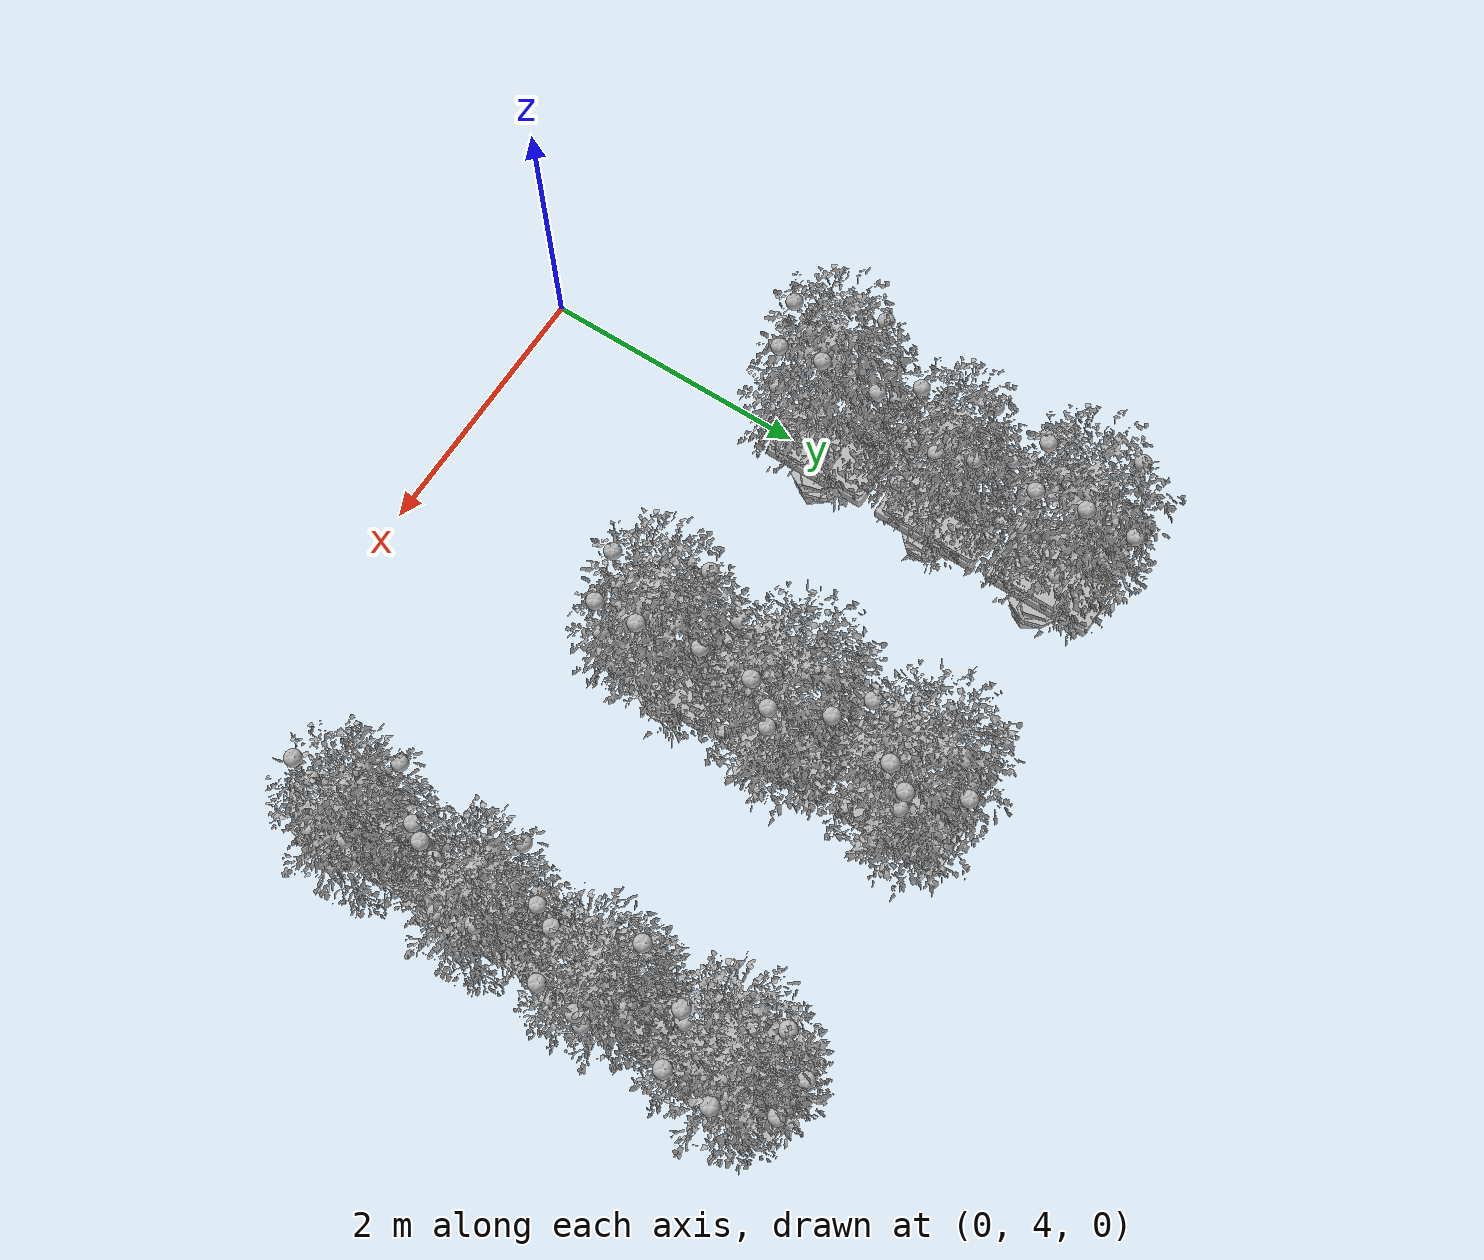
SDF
<sdf version="1.6">
 <world name="default">
  <model name="plant07">
   <static>1</static>
   <link name="plant_1_link">
    <visual name="visual">
     <pose>0 0 -0.45 0 -0 0</pose>
     <geometry>
      <mesh><uri>model://plant/meshes/plant.obj</uri><scale>1.10961 1.10961 1.10961</scale></mesh>
     </geometry>
    </visual>
    <collision name="collision"><geometry><box><size>0.1 0.1 0.1</size></box></geometry></collision>
   </link>
   <link name="trough_1::trough_link">
    <visual name="visual"><geometry><mesh><uri>model://trough/meshes/truf.obj</uri></mesh></geometry></visual>
    <collision name="collision">
     <geometry><mesh><uri>model://trough/meshes/truf.obj</uri></mesh></geometry>
    </collision>
    <pose>0 0 0 1.57 -0 0</pose>
   </link>
   <link name="tomato_10::tomato_link">
    <visual name="visual"><geometry><mesh><uri>model://tomato/meshes/tomato.obj</uri></mesh></geometry></visual>
    <collision name="collision">
     <geometry><mesh><uri>model://tomato/meshes/tomato.obj</uri></mesh></geometry>
    </collision>
    <pose>-0.201 0.268 0.917 0 -0 0</pose>
   </link>
   <link name="tomato_11::tomato_link">
    <visual name="visual"><geometry><mesh><uri>model://tomato/meshes/tomato.obj</uri></mesh></geometry></visual>
    <collision name="collision">
     <geometry><mesh><uri>model://tomato/meshes/tomato.obj</uri></mesh></geometry>
    </collision>
    <pose>0.181 0.231 1.714 0 -0 0</pose>
   </link>
   <link name="tomato_12::tomato_link">
    <visual name="visual"><geometry><mesh><uri>model://tomato/meshes/tomato.obj</uri></mesh></geometry></visual>
    <collision name="collision">
     <geometry><mesh><uri>model://tomato/meshes/tomato.obj</uri></mesh></geometry>
    </collision>
    <pose>0.371 -0.171 1.608 0 -0 0</pose>
   </link>
   <link name="tomato_13::tomato_link">
    <visual name="visual"><geometry><mesh><uri>model://tomato/meshes/tomato.obj</uri></mesh></geometry></visual>
    <collision name="collision">
     <geometry><mesh><uri>model://tomato/meshes/tomato.obj</uri></mesh></geometry>
    </collision>
    <pose>0.059 -0.345 0.978 0 -0 0</pose>
   </link>
   <link name="tomato_14::tomato_link">
    <visual name="visual"><geometry><mesh><uri>model://tomato/meshes/tomato.obj</uri></mesh></geometry></visual>
    <collision name="collision">
     <geometry><mesh><uri>model://tomato/meshes/tomato.obj</uri></mesh></geometry>
    </collision>
    <pose>-0.263 -0.309 1.283 0 -0 0</pose>
   </link>
   <link name="tomato_15::tomato_link">
    <visual name="visual"><geometry><mesh><uri>model://tomato/meshes/tomato.obj</uri></mesh></geometry></visual>
    <collision name="collision">
     <geometry><mesh><uri>model://tomato/meshes/tomato.obj</uri></mesh></geometry>
    </collision>
    <pose>-0.354 0.008 1.283 0 -0 0</pose>
   </link>
   <link name="tomato_16::tomato_link">
    <visual name="visual"><geometry><mesh><uri>model://tomato/meshes/tomato.obj</uri></mesh></geometry></visual>
    <collision name="collision">
     <geometry><mesh><uri>model://tomato/meshes/tomato.obj</uri></mesh></geometry>
    </collision>
    <pose>0.389 0.13 1.096 0 -0 0</pose>
   </link>
   <link name="tomato_17::tomato_link">
    <visual name="visual"><geometry><mesh><uri>model://tomato/meshes/tomato.obj</uri></mesh></geometry></visual>
    <collision name="collision">
     <geometry><mesh><uri>model://tomato/meshes/tomato.obj</uri></mesh></geometry>
    </collision>
    <pose>0.059 -0.345 1.95 0 -0 0</pose>
   </link>
   <link name="tomato_18::tomato_link">
    <visual name="visual"><geometry><mesh><uri>model://tomato/meshes/tomato.obj</uri></mesh></geometry></visual>
    <collision name="collision">
     <geometry><mesh><uri>model://tomato/meshes/tomato.obj</uri></mesh></geometry>
    </collision>
    <pose>-0.263 -0.309 1.773 0 -0 0</pose>
   </link>
   <link name="tomato_19::tomato_link">
    <visual name="visual"><geometry><mesh><uri>model://tomato/meshes/tomato.obj</uri></mesh></geometry></visual>
    <collision name="collision">
     <geometry><mesh><uri>model://tomato/meshes/tomato.obj</uri></mesh></geometry>
    </collision>
    <pose>-0.354 0.008 1.773 0 -0 0</pose>
   </link>
   <pose>0 6.3 0 0 -0 1.57</pose>
  </model>
  <model name="plant08">
   <static>1</static>
   <link name="plant_4::plant">
    <visual name="visual"><geometry><mesh><uri>model://plant/meshes/plant.obj</uri></mesh></geometry></visual>
    <collision name="collision"><geometry><box><size>0.1 0.1 0.1</size></box></geometry></collision>
    <pose>0 0 -0.45 0 0 -0.277507</pose>
   </link>
   <link name="trough::trough_link">
    <visual name="visual"><geometry><mesh><uri>model://trough/meshes/truf.obj</uri></mesh></geometry></visual>
    <collision name="collision">
     <geometry><mesh><uri>model://trough/meshes/truf.obj</uri></mesh></geometry>
    </collision>
    <pose>0 0 0 1.57 -0 0</pose>
   </link>
   <link name="tomato_40::tomato_link">
    <visual name="visual"><geometry><mesh><uri>model://tomato/meshes/tomato.obj</uri></mesh></geometry></visual>
    <collision name="collision">
     <geometry><mesh><uri>model://tomato/meshes/tomato.obj</uri></mesh></geometry>
    </collision>
    <pose>-0.297 0.244 0.669 0 -0 0</pose>
   </link>
   <link name="tomato_41::tomato_link">
    <visual name="visual"><geometry><mesh><uri>model://tomato/meshes/tomato.obj</uri></mesh></geometry></visual>
    <collision name="collision">
     <geometry><mesh><uri>model://tomato/meshes/tomato.obj</uri></mesh></geometry>
    </collision>
    <pose>0.073 0.375 1.175 0 -0 0</pose>
   </link>
   <link name="tomato_42::tomato_link">
    <visual name="visual"><geometry><mesh><uri>model://tomato/meshes/tomato.obj</uri></mesh></geometry></visual>
    <collision name="collision">
     <geometry><mesh><uri>model://tomato/meshes/tomato.obj</uri></mesh></geometry>
    </collision>
    <pose>0.196 -0.202 1.528 0 -0 0</pose>
   </link>
   <link name="tomato_43::tomato_link">
    <visual name="visual"><geometry><mesh><uri>model://tomato/meshes/tomato.obj</uri></mesh></geometry></visual>
    <collision name="collision">
     <geometry><mesh><uri>model://tomato/meshes/tomato.obj</uri></mesh></geometry>
    </collision>
    <pose>0.054 -0.237 0.732 0 -0 0</pose>
   </link>
   <link name="tomato_44::tomato_link">
    <visual name="visual"><geometry><mesh><uri>model://tomato/meshes/tomato.obj</uri></mesh></geometry></visual>
    <collision name="collision">
     <geometry><mesh><uri>model://tomato/meshes/tomato.obj</uri></mesh></geometry>
    </collision>
    <pose>-0.236 -0.275 0.851 0 -0 0</pose>
   </link>
   <link name="tomato_45::tomato_link">
    <visual name="visual"><geometry><mesh><uri>model://tomato/meshes/tomato.obj</uri></mesh></geometry></visual>
    <collision name="collision">
     <geometry><mesh><uri>model://tomato/meshes/tomato.obj</uri></mesh></geometry>
    </collision>
    <pose>-0.318 0.01 1.158 0 -0 0</pose>
   </link>
   <link name="tomato_46::tomato_link">
    <visual name="visual"><geometry><mesh><uri>model://tomato/meshes/tomato.obj</uri></mesh></geometry></visual>
    <collision name="collision">
     <geometry><mesh><uri>model://tomato/meshes/tomato.obj</uri></mesh></geometry>
    </collision>
    <pose>0.351 0.12 1.158 0 -0 0</pose>
   </link>
   <link name="tomato_47::tomato_link">
    <visual name="visual"><geometry><mesh><uri>model://tomato/meshes/tomato.obj</uri></mesh></geometry></visual>
    <collision name="collision">
     <geometry><mesh><uri>model://tomato/meshes/tomato.obj</uri></mesh></geometry>
    </collision>
    <pose>-0.039 -0.257 1.451 0 -0 0</pose>
   </link>
   <link name="tomato_48::tomato_link">
    <visual name="visual"><geometry><mesh><uri>model://tomato/meshes/tomato.obj</uri></mesh></geometry></visual>
    <collision name="collision">
     <geometry><mesh><uri>model://tomato/meshes/tomato.obj</uri></mesh></geometry>
    </collision>
    <pose>-0.236 -0.189 1.233 0 -0 0</pose>
   </link>
   <link name="tomato_49::tomato_link">
    <visual name="visual"><geometry><mesh><uri>model://tomato/meshes/tomato.obj</uri></mesh></geometry></visual>
    <collision name="collision">
     <geometry><mesh><uri>model://tomato/meshes/tomato.obj</uri></mesh></geometry>
    </collision>
    <pose>-0.318 0.01 1.599 0 -0 0</pose>
   </link>
   <pose>0 7.2 0 0 -0 1.57</pose>
  </model>
  <model name="plant09">
   <static>1</static>
   <link name="plant_1_link">
    <visual name="visual">
     <pose>0 0 -0.45 0 -0 0</pose>
     <geometry>
      <mesh><uri>model://plant/meshes/plant.obj</uri><scale>1.10961 1.10961 1.10961</scale></mesh>
     </geometry>
    </visual>
    <collision name="collision"><geometry><box><size>0.1 0.1 0.1</size></box></geometry></collision>
   </link>
   <link name="trough_1::trough_link">
    <visual name="visual"><geometry><mesh><uri>model://trough/meshes/truf.obj</uri></mesh></geometry></visual>
    <collision name="collision">
     <geometry><mesh><uri>model://trough/meshes/truf.obj</uri></mesh></geometry>
    </collision>
    <pose>0 0 0 1.57 -0 0</pose>
   </link>
   <link name="tomato_10::tomato_link">
    <visual name="visual"><geometry><mesh><uri>model://tomato/meshes/tomato.obj</uri></mesh></geometry></visual>
    <collision name="collision">
     <geometry><mesh><uri>model://tomato/meshes/tomato.obj</uri></mesh></geometry>
    </collision>
    <pose>-0.201 0.268 0.917 0 -0 0</pose>
   </link>
   <link name="tomato_11::tomato_link">
    <visual name="visual"><geometry><mesh><uri>model://tomato/meshes/tomato.obj</uri></mesh></geometry></visual>
    <collision name="collision">
     <geometry><mesh><uri>model://tomato/meshes/tomato.obj</uri></mesh></geometry>
    </collision>
    <pose>0.181 0.231 1.714 0 -0 0</pose>
   </link>
   <link name="tomato_12::tomato_link">
    <visual name="visual"><geometry><mesh><uri>model://tomato/meshes/tomato.obj</uri></mesh></geometry></visual>
    <collision name="collision">
     <geometry><mesh><uri>model://tomato/meshes/tomato.obj</uri></mesh></geometry>
    </collision>
    <pose>0.371 -0.171 1.608 0 -0 0</pose>
   </link>
   <link name="tomato_13::tomato_link">
    <visual name="visual"><geometry><mesh><uri>model://tomato/meshes/tomato.obj</uri></mesh></geometry></visual>
    <collision name="collision">
     <geometry><mesh><uri>model://tomato/meshes/tomato.obj</uri></mesh></geometry>
    </collision>
    <pose>0.059 -0.345 0.978 0 -0 0</pose>
   </link>
   <link name="tomato_14::tomato_link">
    <visual name="visual"><geometry><mesh><uri>model://tomato/meshes/tomato.obj</uri></mesh></geometry></visual>
    <collision name="collision">
     <geometry><mesh><uri>model://tomato/meshes/tomato.obj</uri></mesh></geometry>
    </collision>
    <pose>-0.263 -0.309 1.283 0 -0 0</pose>
   </link>
   <link name="tomato_15::tomato_link">
    <visual name="visual"><geometry><mesh><uri>model://tomato/meshes/tomato.obj</uri></mesh></geometry></visual>
    <collision name="collision">
     <geometry><mesh><uri>model://tomato/meshes/tomato.obj</uri></mesh></geometry>
    </collision>
    <pose>-0.354 0.008 1.283 0 -0 0</pose>
   </link>
   <link name="tomato_16::tomato_link">
    <visual name="visual"><geometry><mesh><uri>model://tomato/meshes/tomato.obj</uri></mesh></geometry></visual>
    <collision name="collision">
     <geometry><mesh><uri>model://tomato/meshes/tomato.obj</uri></mesh></geometry>
    </collision>
    <pose>0.389 0.13 1.096 0 -0 0</pose>
   </link>
   <link name="tomato_17::tomato_link">
    <visual name="visual"><geometry><mesh><uri>model://tomato/meshes/tomato.obj</uri></mesh></geometry></visual>
    <collision name="collision">
     <geometry><mesh><uri>model://tomato/meshes/tomato.obj</uri></mesh></geometry>
    </collision>
    <pose>0.059 -0.345 1.95 0 -0 0</pose>
   </link>
   <link name="tomato_18::tomato_link">
    <visual name="visual"><geometry><mesh><uri>model://tomato/meshes/tomato.obj</uri></mesh></geometry></visual>
    <collision name="collision">
     <geometry><mesh><uri>model://tomato/meshes/tomato.obj</uri></mesh></geometry>
    </collision>
    <pose>-0.263 -0.309 1.773 0 -0 0</pose>
   </link>
   <link name="tomato_19::tomato_link">
    <visual name="visual"><geometry><mesh><uri>model://tomato/meshes/tomato.obj</uri></mesh></geometry></visual>
    <collision name="collision">
     <geometry><mesh><uri>model://tomato/meshes/tomato.obj</uri></mesh></geometry>
    </collision>
    <pose>-0.354 0.008 1.773 0 -0 0</pose>
   </link>
   <pose>0 8.1 0 0 -0 1.57</pose>
  </model>
  <model name="plant17">
   <static>1</static>
   <link name="plant_1_link">
    <visual name="visual">
     <pose>0 0 -0.45 0 -0 0</pose>
     <geometry>
      <mesh><uri>model://plant/meshes/plant.obj</uri><scale>1.10961 1.10961 1.10961</scale></mesh>
     </geometry>
    </visual>
    <collision name="collision"><geometry><box><size>0.1 0.1 0.1</size></box></geometry></collision>
   </link>
   <link name="trough_1::trough_link">
    <visual name="visual"><geometry><mesh><uri>model://trough/meshes/truf.obj</uri></mesh></geometry></visual>
    <collision name="collision">
     <geometry><mesh><uri>model://trough/meshes/truf.obj</uri></mesh></geometry>
    </collision>
    <pose>0 0 0 1.57 -0 0</pose>
   </link>
   <link name="tomato_10::tomato_link">
    <visual name="visual"><geometry><mesh><uri>model://tomato/meshes/tomato.obj</uri></mesh></geometry></visual>
    <collision name="collision">
     <geometry><mesh><uri>model://tomato/meshes/tomato.obj</uri></mesh></geometry>
    </collision>
    <pose>-0.201 0.268 0.917 0 -0 0</pose>
   </link>
   <link name="tomato_11::tomato_link">
    <visual name="visual"><geometry><mesh><uri>model://tomato/meshes/tomato.obj</uri></mesh></geometry></visual>
    <collision name="collision">
     <geometry><mesh><uri>model://tomato/meshes/tomato.obj</uri></mesh></geometry>
    </collision>
    <pose>0.181 0.231 1.714 0 -0 0</pose>
   </link>
   <link name="tomato_12::tomato_link">
    <visual name="visual"><geometry><mesh><uri>model://tomato/meshes/tomato.obj</uri></mesh></geometry></visual>
    <collision name="collision">
     <geometry><mesh><uri>model://tomato/meshes/tomato.obj</uri></mesh></geometry>
    </collision>
    <pose>0.371 -0.171 1.608 0 -0 0</pose>
   </link>
   <link name="tomato_13::tomato_link">
    <visual name="visual"><geometry><mesh><uri>model://tomato/meshes/tomato.obj</uri></mesh></geometry></visual>
    <collision name="collision">
     <geometry><mesh><uri>model://tomato/meshes/tomato.obj</uri></mesh></geometry>
    </collision>
    <pose>0.059 -0.345 0.978 0 -0 0</pose>
   </link>
   <link name="tomato_14::tomato_link">
    <visual name="visual"><geometry><mesh><uri>model://tomato/meshes/tomato.obj</uri></mesh></geometry></visual>
    <collision name="collision">
     <geometry><mesh><uri>model://tomato/meshes/tomato.obj</uri></mesh></geometry>
    </collision>
    <pose>-0.263 -0.309 1.283 0 -0 0</pose>
   </link>
   <link name="tomato_15::tomato_link">
    <visual name="visual"><geometry><mesh><uri>model://tomato/meshes/tomato.obj</uri></mesh></geometry></visual>
    <collision name="collision">
     <geometry><mesh><uri>model://tomato/meshes/tomato.obj</uri></mesh></geometry>
    </collision>
    <pose>-0.354 0.008 1.283 0 -0 0</pose>
   </link>
   <link name="tomato_16::tomato_link">
    <visual name="visual"><geometry><mesh><uri>model://tomato/meshes/tomato.obj</uri></mesh></geometry></visual>
    <collision name="collision">
     <geometry><mesh><uri>model://tomato/meshes/tomato.obj</uri></mesh></geometry>
    </collision>
    <pose>0.389 0.13 1.096 0 -0 0</pose>
   </link>
   <link name="tomato_17::tomato_link">
    <visual name="visual"><geometry><mesh><uri>model://tomato/meshes/tomato.obj</uri></mesh></geometry></visual>
    <collision name="collision">
     <geometry><mesh><uri>model://tomato/meshes/tomato.obj</uri></mesh></geometry>
    </collision>
    <pose>0.059 -0.345 1.95 0 -0 0</pose>
   </link>
   <link name="tomato_18::tomato_link">
    <visual name="visual"><geometry><mesh><uri>model://tomato/meshes/tomato.obj</uri></mesh></geometry></visual>
    <collision name="collision">
     <geometry><mesh><uri>model://tomato/meshes/tomato.obj</uri></mesh></geometry>
    </collision>
    <pose>-0.263 -0.309 1.773 0 -0 0</pose>
   </link>
   <link name="tomato_19::tomato_link">
    <visual name="visual"><geometry><mesh><uri>model://tomato/meshes/tomato.obj</uri></mesh></geometry></visual>
    <collision name="collision">
     <geometry><mesh><uri>model://tomato/meshes/tomato.obj</uri></mesh></geometry>
    </collision>
    <pose>-0.354 0.008 1.773 0 -0 0</pose>
   </link>
   <pose>2 6.3 0 0 -0 1.57</pose>
  </model>
  <model name="plant18">
   <static>1</static>
   <link name="plant_3_link">
    <visual name="visual">
     <pose>0 0 -0.45 0 0 -1.57</pose>
     <geometry>
      <mesh><uri>model://plant/meshes/plant.obj</uri><scale>1.13768 1.13768 1.13768</scale></mesh>
     </geometry>
    </visual>
   </link>
   <link name="trough::trough_link">
    <visual name="visual"><geometry><mesh><uri>model://trough/meshes/truf.obj</uri></mesh></geometry></visual>
    <collision name="collision">
     <geometry><mesh><uri>model://trough/meshes/truf.obj</uri></mesh></geometry>
    </collision>
    <pose>0 0 0 1.57 -0 0</pose>
   </link>
   <link name="tomato_30::tomato_link">
    <visual name="visual"><geometry><mesh><uri>model://tomato/meshes/tomato.obj</uri></mesh></geometry></visual>
    <collision name="collision">
     <geometry><mesh><uri>model://tomato/meshes/tomato.obj</uri></mesh></geometry>
    </collision>
    <pose>-0.364 0.298 0.921 0 -0 0</pose>
   </link>
   <link name="tomato_31::tomato_link">
    <visual name="visual"><geometry><mesh><uri>model://tomato/meshes/tomato.obj</uri></mesh></geometry></visual>
    <collision name="collision">
     <geometry><mesh><uri>model://tomato/meshes/tomato.obj</uri></mesh></geometry>
    </collision>
    <pose>0.161 0.29 0.769 0 -0 0</pose>
   </link>
   <link name="tomato_32::tomato_link">
    <visual name="visual"><geometry><mesh><uri>model://tomato/meshes/tomato.obj</uri></mesh></geometry></visual>
    <collision name="collision">
     <geometry><mesh><uri>model://tomato/meshes/tomato.obj</uri></mesh></geometry>
    </collision>
    <pose>0.355 -0.152 1.751 0 -0 0</pose>
   </link>
   <link name="tomato_33::tomato_link">
    <visual name="visual"><geometry><mesh><uri>model://tomato/meshes/tomato.obj</uri></mesh></geometry></visual>
    <collision name="collision">
     <geometry><mesh><uri>model://tomato/meshes/tomato.obj</uri></mesh></geometry>
    </collision>
    <pose>0.036 -0.33 1.477 0 -0 0</pose>
   </link>
   <link name="tomato_34::tomato_link">
    <visual name="visual"><geometry><mesh><uri>model://tomato/meshes/tomato.obj</uri></mesh></geometry></visual>
    <collision name="collision">
     <geometry><mesh><uri>model://tomato/meshes/tomato.obj</uri></mesh></geometry>
    </collision>
    <pose>-0.294 -0.293 0.701 0 -0 0</pose>
   </link>
   <link name="tomato_35::tomato_link">
    <visual name="visual"><geometry><mesh><uri>model://tomato/meshes/tomato.obj</uri></mesh></geometry></visual>
    <collision name="collision">
     <geometry><mesh><uri>model://tomato/meshes/tomato.obj</uri></mesh></geometry>
    </collision>
    <pose>-0.388 0.032 1.317 0 -0 0</pose>
   </link>
   <link name="tomato_36::tomato_link">
    <visual name="visual"><geometry><mesh><uri>model://tomato/meshes/tomato.obj</uri></mesh></geometry></visual>
    <collision name="collision">
     <geometry><mesh><uri>model://tomato/meshes/tomato.obj</uri></mesh></geometry>
    </collision>
    <pose>0.374 0.157 1.317 0 -0 0</pose>
   </link>
   <link name="tomato_37::tomato_link">
    <visual name="visual"><geometry><mesh><uri>model://tomato/meshes/tomato.obj</uri></mesh></geometry></visual>
    <collision name="collision">
     <geometry><mesh><uri>model://tomato/meshes/tomato.obj</uri></mesh></geometry>
    </collision>
    <pose>0.036 -0.33 1.82 0 -0 0</pose>
   </link>
   <link name="tomato_38::tomato_link">
    <visual name="visual"><geometry><mesh><uri>model://tomato/meshes/tomato.obj</uri></mesh></geometry></visual>
    <collision name="collision">
     <geometry><mesh><uri>model://tomato/meshes/tomato.obj</uri></mesh></geometry>
    </collision>
    <pose>-0.102 -0.293 2.016 0 -0 0</pose>
   </link>
   <link name="tomato_39::tomato_link">
    <visual name="visual"><geometry><mesh><uri>model://tomato/meshes/tomato.obj</uri></mesh></geometry></visual>
    <collision name="collision">
     <geometry><mesh><uri>model://tomato/meshes/tomato.obj</uri></mesh></geometry>
    </collision>
    <pose>-0.388 0.032 1.82 0 -0 0</pose>
   </link>
   <pose>2 7.2 0 0 -0 1.57</pose>
  </model>
  <model name="plant19">
   <static>1</static>
   <link name="plant_3_link">
    <visual name="visual">
     <pose>0 0 -0.45 0 0 -1.57</pose>
     <geometry>
      <mesh><uri>model://plant/meshes/plant.obj</uri><scale>1.13768 1.13768 1.13768</scale></mesh>
     </geometry>
    </visual>
   </link>
   <link name="trough::trough_link">
    <visual name="visual"><geometry><mesh><uri>model://trough/meshes/truf.obj</uri></mesh></geometry></visual>
    <collision name="collision">
     <geometry><mesh><uri>model://trough/meshes/truf.obj</uri></mesh></geometry>
    </collision>
    <pose>0 0 0 1.57 -0 0</pose>
   </link>
   <link name="tomato_30::tomato_link">
    <visual name="visual"><geometry><mesh><uri>model://tomato/meshes/tomato.obj</uri></mesh></geometry></visual>
    <collision name="collision">
     <geometry><mesh><uri>model://tomato/meshes/tomato.obj</uri></mesh></geometry>
    </collision>
    <pose>-0.364 0.298 0.921 0 -0 0</pose>
   </link>
   <link name="tomato_31::tomato_link">
    <visual name="visual"><geometry><mesh><uri>model://tomato/meshes/tomato.obj</uri></mesh></geometry></visual>
    <collision name="collision">
     <geometry><mesh><uri>model://tomato/meshes/tomato.obj</uri></mesh></geometry>
    </collision>
    <pose>0.161 0.29 0.769 0 -0 0</pose>
   </link>
   <link name="tomato_32::tomato_link">
    <visual name="visual"><geometry><mesh><uri>model://tomato/meshes/tomato.obj</uri></mesh></geometry></visual>
    <collision name="collision">
     <geometry><mesh><uri>model://tomato/meshes/tomato.obj</uri></mesh></geometry>
    </collision>
    <pose>0.355 -0.152 1.751 0 -0 0</pose>
   </link>
   <link name="tomato_33::tomato_link">
    <visual name="visual"><geometry><mesh><uri>model://tomato/meshes/tomato.obj</uri></mesh></geometry></visual>
    <collision name="collision">
     <geometry><mesh><uri>model://tomato/meshes/tomato.obj</uri></mesh></geometry>
    </collision>
    <pose>0.036 -0.33 1.477 0 -0 0</pose>
   </link>
   <link name="tomato_34::tomato_link">
    <visual name="visual"><geometry><mesh><uri>model://tomato/meshes/tomato.obj</uri></mesh></geometry></visual>
    <collision name="collision">
     <geometry><mesh><uri>model://tomato/meshes/tomato.obj</uri></mesh></geometry>
    </collision>
    <pose>-0.294 -0.293 0.701 0 -0 0</pose>
   </link>
   <link name="tomato_35::tomato_link">
    <visual name="visual"><geometry><mesh><uri>model://tomato/meshes/tomato.obj</uri></mesh></geometry></visual>
    <collision name="collision">
     <geometry><mesh><uri>model://tomato/meshes/tomato.obj</uri></mesh></geometry>
    </collision>
    <pose>-0.388 0.032 1.317 0 -0 0</pose>
   </link>
   <link name="tomato_36::tomato_link">
    <visual name="visual"><geometry><mesh><uri>model://tomato/meshes/tomato.obj</uri></mesh></geometry></visual>
    <collision name="collision">
     <geometry><mesh><uri>model://tomato/meshes/tomato.obj</uri></mesh></geometry>
    </collision>
    <pose>0.374 0.157 1.317 0 -0 0</pose>
   </link>
   <link name="tomato_37::tomato_link">
    <visual name="visual"><geometry><mesh><uri>model://tomato/meshes/tomato.obj</uri></mesh></geometry></visual>
    <collision name="collision">
     <geometry><mesh><uri>model://tomato/meshes/tomato.obj</uri></mesh></geometry>
    </collision>
    <pose>0.036 -0.33 1.82 0 -0 0</pose>
   </link>
   <link name="tomato_38::tomato_link">
    <visual name="visual"><geometry><mesh><uri>model://tomato/meshes/tomato.obj</uri></mesh></geometry></visual>
    <collision name="collision">
     <geometry><mesh><uri>model://tomato/meshes/tomato.obj</uri></mesh></geometry>
    </collision>
    <pose>-0.102 -0.293 2.016 0 -0 0</pose>
   </link>
   <link name="tomato_39::tomato_link">
    <visual name="visual"><geometry><mesh><uri>model://tomato/meshes/tomato.obj</uri></mesh></geometry></visual>
    <collision name="collision">
     <geometry><mesh><uri>model://tomato/meshes/tomato.obj</uri></mesh></geometry>
    </collision>
    <pose>-0.388 0.032 1.82 0 -0 0</pose>
   </link>
   <pose>2 8.1 0 0 -0 1.57</pose>
  </model>
  <model name="plant26">
   <static>1</static>
   <link name="plant_4::plant">
    <visual name="visual"><geometry><mesh><uri>model://plant/meshes/plant.obj</uri></mesh></geometry></visual>
    <collision name="collision"><geometry><box><size>0.1 0.1 0.1</size></box></geometry></collision>
    <pose>0 0 -0.45 0 0 -0.277507</pose>
   </link>
   <link name="trough::trough_link">
    <visual name="visual"><geometry><mesh><uri>model://trough/meshes/truf.obj</uri></mesh></geometry></visual>
    <collision name="collision">
     <geometry><mesh><uri>model://trough/meshes/truf.obj</uri></mesh></geometry>
    </collision>
    <pose>0 0 0 1.57 -0 0</pose>
   </link>
   <link name="tomato_40::tomato_link">
    <visual name="visual"><geometry><mesh><uri>model://tomato/meshes/tomato.obj</uri></mesh></geometry></visual>
    <collision name="collision">
     <geometry><mesh><uri>model://tomato/meshes/tomato.obj</uri></mesh></geometry>
    </collision>
    <pose>-0.297 0.244 0.669 0 -0 0</pose>
   </link>
   <link name="tomato_41::tomato_link">
    <visual name="visual"><geometry><mesh><uri>model://tomato/meshes/tomato.obj</uri></mesh></geometry></visual>
    <collision name="collision">
     <geometry><mesh><uri>model://tomato/meshes/tomato.obj</uri></mesh></geometry>
    </collision>
    <pose>0.073 0.375 1.175 0 -0 0</pose>
   </link>
   <link name="tomato_42::tomato_link">
    <visual name="visual"><geometry><mesh><uri>model://tomato/meshes/tomato.obj</uri></mesh></geometry></visual>
    <collision name="collision">
     <geometry><mesh><uri>model://tomato/meshes/tomato.obj</uri></mesh></geometry>
    </collision>
    <pose>0.196 -0.202 1.528 0 -0 0</pose>
   </link>
   <link name="tomato_43::tomato_link">
    <visual name="visual"><geometry><mesh><uri>model://tomato/meshes/tomato.obj</uri></mesh></geometry></visual>
    <collision name="collision">
     <geometry><mesh><uri>model://tomato/meshes/tomato.obj</uri></mesh></geometry>
    </collision>
    <pose>0.054 -0.237 0.732 0 -0 0</pose>
   </link>
   <link name="tomato_44::tomato_link">
    <visual name="visual"><geometry><mesh><uri>model://tomato/meshes/tomato.obj</uri></mesh></geometry></visual>
    <collision name="collision">
     <geometry><mesh><uri>model://tomato/meshes/tomato.obj</uri></mesh></geometry>
    </collision>
    <pose>-0.236 -0.275 0.851 0 -0 0</pose>
   </link>
   <link name="tomato_45::tomato_link">
    <visual name="visual"><geometry><mesh><uri>model://tomato/meshes/tomato.obj</uri></mesh></geometry></visual>
    <collision name="collision">
     <geometry><mesh><uri>model://tomato/meshes/tomato.obj</uri></mesh></geometry>
    </collision>
    <pose>-0.318 0.01 1.158 0 -0 0</pose>
   </link>
   <link name="tomato_46::tomato_link">
    <visual name="visual"><geometry><mesh><uri>model://tomato/meshes/tomato.obj</uri></mesh></geometry></visual>
    <collision name="collision">
     <geometry><mesh><uri>model://tomato/meshes/tomato.obj</uri></mesh></geometry>
    </collision>
    <pose>0.351 0.12 1.158 0 -0 0</pose>
   </link>
   <link name="tomato_47::tomato_link">
    <visual name="visual"><geometry><mesh><uri>model://tomato/meshes/tomato.obj</uri></mesh></geometry></visual>
    <collision name="collision">
     <geometry><mesh><uri>model://tomato/meshes/tomato.obj</uri></mesh></geometry>
    </collision>
    <pose>-0.039 -0.257 1.451 0 -0 0</pose>
   </link>
   <link name="tomato_48::tomato_link">
    <visual name="visual"><geometry><mesh><uri>model://tomato/meshes/tomato.obj</uri></mesh></geometry></visual>
    <collision name="collision">
     <geometry><mesh><uri>model://tomato/meshes/tomato.obj</uri></mesh></geometry>
    </collision>
    <pose>-0.236 -0.189 1.233 0 -0 0</pose>
   </link>
   <link name="tomato_49::tomato_link">
    <visual name="visual"><geometry><mesh><uri>model://tomato/meshes/tomato.obj</uri></mesh></geometry></visual>
    <collision name="collision">
     <geometry><mesh><uri>model://tomato/meshes/tomato.obj</uri></mesh></geometry>
    </collision>
    <pose>-0.318 0.01 1.599 0 -0 0</pose>
   </link>
   <pose>4 5.4 0 0 -0 1.57</pose>
  </model>
  <model name="plant27">
   <static>1</static>
   <link name="plant_4::plant">
    <visual name="visual"><geometry><mesh><uri>model://plant/meshes/plant.obj</uri></mesh></geometry></visual>
    <collision name="collision"><geometry><box><size>0.1 0.1 0.1</size></box></geometry></collision>
    <pose>0 0 -0.45 0 0 -0.277507</pose>
   </link>
   <link name="trough::trough_link">
    <visual name="visual"><geometry><mesh><uri>model://trough/meshes/truf.obj</uri></mesh></geometry></visual>
    <collision name="collision">
     <geometry><mesh><uri>model://trough/meshes/truf.obj</uri></mesh></geometry>
    </collision>
    <pose>0 0 0 1.57 -0 0</pose>
   </link>
   <link name="tomato_40::tomato_link">
    <visual name="visual"><geometry><mesh><uri>model://tomato/meshes/tomato.obj</uri></mesh></geometry></visual>
    <collision name="collision">
     <geometry><mesh><uri>model://tomato/meshes/tomato.obj</uri></mesh></geometry>
    </collision>
    <pose>-0.297 0.244 0.669 0 -0 0</pose>
   </link>
   <link name="tomato_41::tomato_link">
    <visual name="visual"><geometry><mesh><uri>model://tomato/meshes/tomato.obj</uri></mesh></geometry></visual>
    <collision name="collision">
     <geometry><mesh><uri>model://tomato/meshes/tomato.obj</uri></mesh></geometry>
    </collision>
    <pose>0.073 0.375 1.175 0 -0 0</pose>
   </link>
   <link name="tomato_42::tomato_link">
    <visual name="visual"><geometry><mesh><uri>model://tomato/meshes/tomato.obj</uri></mesh></geometry></visual>
    <collision name="collision">
     <geometry><mesh><uri>model://tomato/meshes/tomato.obj</uri></mesh></geometry>
    </collision>
    <pose>0.196 -0.202 1.528 0 -0 0</pose>
   </link>
   <link name="tomato_43::tomato_link">
    <visual name="visual"><geometry><mesh><uri>model://tomato/meshes/tomato.obj</uri></mesh></geometry></visual>
    <collision name="collision">
     <geometry><mesh><uri>model://tomato/meshes/tomato.obj</uri></mesh></geometry>
    </collision>
    <pose>0.054 -0.237 0.732 0 -0 0</pose>
   </link>
   <link name="tomato_44::tomato_link">
    <visual name="visual"><geometry><mesh><uri>model://tomato/meshes/tomato.obj</uri></mesh></geometry></visual>
    <collision name="collision">
     <geometry><mesh><uri>model://tomato/meshes/tomato.obj</uri></mesh></geometry>
    </collision>
    <pose>-0.236 -0.275 0.851 0 -0 0</pose>
   </link>
   <link name="tomato_45::tomato_link">
    <visual name="visual"><geometry><mesh><uri>model://tomato/meshes/tomato.obj</uri></mesh></geometry></visual>
    <collision name="collision">
     <geometry><mesh><uri>model://tomato/meshes/tomato.obj</uri></mesh></geometry>
    </collision>
    <pose>-0.318 0.01 1.158 0 -0 0</pose>
   </link>
   <link name="tomato_46::tomato_link">
    <visual name="visual"><geometry><mesh><uri>model://tomato/meshes/tomato.obj</uri></mesh></geometry></visual>
    <collision name="collision">
     <geometry><mesh><uri>model://tomato/meshes/tomato.obj</uri></mesh></geometry>
    </collision>
    <pose>0.351 0.12 1.158 0 -0 0</pose>
   </link>
   <link name="tomato_47::tomato_link">
    <visual name="visual"><geometry><mesh><uri>model://tomato/meshes/tomato.obj</uri></mesh></geometry></visual>
    <collision name="collision">
     <geometry><mesh><uri>model://tomato/meshes/tomato.obj</uri></mesh></geometry>
    </collision>
    <pose>-0.039 -0.257 1.451 0 -0 0</pose>
   </link>
   <link name="tomato_48::tomato_link">
    <visual name="visual"><geometry><mesh><uri>model://tomato/meshes/tomato.obj</uri></mesh></geometry></visual>
    <collision name="collision">
     <geometry><mesh><uri>model://tomato/meshes/tomato.obj</uri></mesh></geometry>
    </collision>
    <pose>-0.236 -0.189 1.233 0 -0 0</pose>
   </link>
   <link name="tomato_49::tomato_link">
    <visual name="visual"><geometry><mesh><uri>model://tomato/meshes/tomato.obj</uri></mesh></geometry></visual>
    <collision name="collision">
     <geometry><mesh><uri>model://tomato/meshes/tomato.obj</uri></mesh></geometry>
    </collision>
    <pose>-0.318 0.01 1.599 0 -0 0</pose>
   </link>
   <pose>4 6.3 0 0 -0 1.57</pose>
  </model>
  <model name="plant28">
   <static>1</static>
   <link name="plant_2::plant">
    <visual name="visual"><geometry><mesh><uri>model://plant/meshes/plant.obj</uri></mesh></geometry></visual>
    <collision name="collision"><geometry><box><size>0.1 0.1 0.1</size></box></geometry></collision>
    <pose>0 0 -0.45 0 -0 0.338594</pose>
   </link>
   <link name="trough::trough_link">
    <visual name="visual"><geometry><mesh><uri>model://trough/meshes/truf.obj</uri></mesh></geometry></visual>
    <collision name="collision">
     <geometry><mesh><uri>model://trough/meshes/truf.obj</uri></mesh></geometry>
    </collision>
    <pose>0 0 0 1.57 -0 0</pose>
   </link>
   <link name="tomato_20::tomato_link">
    <visual name="visual"><geometry><mesh><uri>model://tomato/meshes/tomato.obj</uri></mesh></geometry></visual>
    <collision name="collision">
     <geometry><mesh><uri>model://tomato/meshes/tomato.obj</uri></mesh></geometry>
    </collision>
    <pose>-0.297 0.244 0.695 0 -0 0</pose>
   </link>
   <link name="tomato_21::tomato_link">
    <visual name="visual"><geometry><mesh><uri>model://tomato/meshes/tomato.obj</uri></mesh></geometry></visual>
    <collision name="collision">
     <geometry><mesh><uri>model://tomato/meshes/tomato.obj</uri></mesh></geometry>
    </collision>
    <pose>0.164 0.199 1.684 0 -0 0</pose>
   </link>
   <link name="tomato_22::tomato_link">
    <visual name="visual"><geometry><mesh><uri>model://tomato/meshes/tomato.obj</uri></mesh></geometry></visual>
    <collision name="collision">
     <geometry><mesh><uri>model://tomato/meshes/tomato.obj</uri></mesh></geometry>
    </collision>
    <pose>0.394 -0.151 0.705 0 -0 0</pose>
   </link>
   <link name="tomato_23::tomato_link">
    <visual name="visual"><geometry><mesh><uri>model://tomato/meshes/tomato.obj</uri></mesh></geometry></visual>
    <collision name="collision">
     <geometry><mesh><uri>model://tomato/meshes/tomato.obj</uri></mesh></geometry>
    </collision>
    <pose>0.054 -0.308 1.158 0 -0 0</pose>
   </link>
   <link name="tomato_24::tomato_link">
    <visual name="visual"><geometry><mesh><uri>model://tomato/meshes/tomato.obj</uri></mesh></geometry></visual>
    <collision name="collision">
     <geometry><mesh><uri>model://tomato/meshes/tomato.obj</uri></mesh></geometry>
    </collision>
    <pose>-0.236 -0.275 0.883 0 -0 0</pose>
   </link>
   <link name="tomato_25::tomato_link">
    <visual name="visual"><geometry><mesh><uri>model://tomato/meshes/tomato.obj</uri></mesh></geometry></visual>
    <collision name="collision">
     <geometry><mesh><uri>model://tomato/meshes/tomato.obj</uri></mesh></geometry>
    </collision>
    <pose>-0.318 0.01 1.158 0 -0 0</pose>
   </link>
   <link name="tomato_26::tomato_link">
    <visual name="visual"><geometry><mesh><uri>model://tomato/meshes/tomato.obj</uri></mesh></geometry></visual>
    <collision name="collision">
     <geometry><mesh><uri>model://tomato/meshes/tomato.obj</uri></mesh></geometry>
    </collision>
    <pose>0.351 0.12 1.158 0 -0 0</pose>
   </link>
   <link name="tomato_27::tomato_link">
    <visual name="visual"><geometry><mesh><uri>model://tomato/meshes/tomato.obj</uri></mesh></geometry></visual>
    <collision name="collision">
     <geometry><mesh><uri>model://tomato/meshes/tomato.obj</uri></mesh></geometry>
    </collision>
    <pose>0.054 -0.308 1.599 0 -0 0</pose>
   </link>
   <link name="tomato_28::tomato_link">
    <visual name="visual"><geometry><mesh><uri>model://tomato/meshes/tomato.obj</uri></mesh></geometry></visual>
    <collision name="collision">
     <geometry><mesh><uri>model://tomato/meshes/tomato.obj</uri></mesh></geometry>
    </collision>
    <pose>-0.236 -0.275 1.464 0 -0 0</pose>
   </link>
   <link name="tomato_29::tomato_link">
    <visual name="visual"><geometry><mesh><uri>model://tomato/meshes/tomato.obj</uri></mesh></geometry></visual>
    <collision name="collision">
     <geometry><mesh><uri>model://tomato/meshes/tomato.obj</uri></mesh></geometry>
    </collision>
    <pose>-0.318 0.01 1.599 0 -0 0</pose>
   </link>
   <pose>4 7.2 -0 0 -0 1.57</pose>
  </model>
  <model name="plant29">
   <static>1</static>
   <link name="plant_1_link">
    <visual name="visual">
     <pose>0 0 -0.45 0 -0 0</pose>
     <geometry>
      <mesh><uri>model://plant/meshes/plant.obj</uri><scale>1.10961 1.10961 1.10961</scale></mesh>
     </geometry>
    </visual>
    <collision name="collision"><geometry><box><size>0.1 0.1 0.1</size></box></geometry></collision>
   </link>
   <link name="trough_1::trough_link">
    <visual name="visual"><geometry><mesh><uri>model://trough/meshes/truf.obj</uri></mesh></geometry></visual>
    <collision name="collision">
     <geometry><mesh><uri>model://trough/meshes/truf.obj</uri></mesh></geometry>
    </collision>
    <pose>0 0 0 1.57 -0 0</pose>
   </link>
   <link name="tomato_10::tomato_link">
    <visual name="visual"><geometry><mesh><uri>model://tomato/meshes/tomato.obj</uri></mesh></geometry></visual>
    <collision name="collision">
     <geometry><mesh><uri>model://tomato/meshes/tomato.obj</uri></mesh></geometry>
    </collision>
    <pose>-0.201 0.268 0.917 0 -0 0</pose>
   </link>
   <link name="tomato_11::tomato_link">
    <visual name="visual"><geometry><mesh><uri>model://tomato/meshes/tomato.obj</uri></mesh></geometry></visual>
    <collision name="collision">
     <geometry><mesh><uri>model://tomato/meshes/tomato.obj</uri></mesh></geometry>
    </collision>
    <pose>0.181 0.231 1.714 0 -0 0</pose>
   </link>
   <link name="tomato_12::tomato_link">
    <visual name="visual"><geometry><mesh><uri>model://tomato/meshes/tomato.obj</uri></mesh></geometry></visual>
    <collision name="collision">
     <geometry><mesh><uri>model://tomato/meshes/tomato.obj</uri></mesh></geometry>
    </collision>
    <pose>0.371 -0.171 1.608 0 -0 0</pose>
   </link>
   <link name="tomato_13::tomato_link">
    <visual name="visual"><geometry><mesh><uri>model://tomato/meshes/tomato.obj</uri></mesh></geometry></visual>
    <collision name="collision">
     <geometry><mesh><uri>model://tomato/meshes/tomato.obj</uri></mesh></geometry>
    </collision>
    <pose>0.059 -0.345 0.978 0 -0 0</pose>
   </link>
   <link name="tomato_14::tomato_link">
    <visual name="visual"><geometry><mesh><uri>model://tomato/meshes/tomato.obj</uri></mesh></geometry></visual>
    <collision name="collision">
     <geometry><mesh><uri>model://tomato/meshes/tomato.obj</uri></mesh></geometry>
    </collision>
    <pose>-0.263 -0.309 1.283 0 -0 0</pose>
   </link>
   <link name="tomato_15::tomato_link">
    <visual name="visual"><geometry><mesh><uri>model://tomato/meshes/tomato.obj</uri></mesh></geometry></visual>
    <collision name="collision">
     <geometry><mesh><uri>model://tomato/meshes/tomato.obj</uri></mesh></geometry>
    </collision>
    <pose>-0.354 0.008 1.283 0 -0 0</pose>
   </link>
   <link name="tomato_16::tomato_link">
    <visual name="visual"><geometry><mesh><uri>model://tomato/meshes/tomato.obj</uri></mesh></geometry></visual>
    <collision name="collision">
     <geometry><mesh><uri>model://tomato/meshes/tomato.obj</uri></mesh></geometry>
    </collision>
    <pose>0.389 0.13 1.096 0 -0 0</pose>
   </link>
   <link name="tomato_17::tomato_link">
    <visual name="visual"><geometry><mesh><uri>model://tomato/meshes/tomato.obj</uri></mesh></geometry></visual>
    <collision name="collision">
     <geometry><mesh><uri>model://tomato/meshes/tomato.obj</uri></mesh></geometry>
    </collision>
    <pose>0.059 -0.345 1.95 0 -0 0</pose>
   </link>
   <link name="tomato_18::tomato_link">
    <visual name="visual"><geometry><mesh><uri>model://tomato/meshes/tomato.obj</uri></mesh></geometry></visual>
    <collision name="collision">
     <geometry><mesh><uri>model://tomato/meshes/tomato.obj</uri></mesh></geometry>
    </collision>
    <pose>-0.263 -0.309 1.773 0 -0 0</pose>
   </link>
   <link name="tomato_19::tomato_link">
    <visual name="visual"><geometry><mesh><uri>model://tomato/meshes/tomato.obj</uri></mesh></geometry></visual>
    <collision name="collision">
     <geometry><mesh><uri>model://tomato/meshes/tomato.obj</uri></mesh></geometry>
    </collision>
    <pose>-0.354 0.008 1.773 0 -0 0</pose>
   </link>
   <pose>4 8.1 0 0 -0 1.57</pose>
  </model>
 </world>
</sdf>
